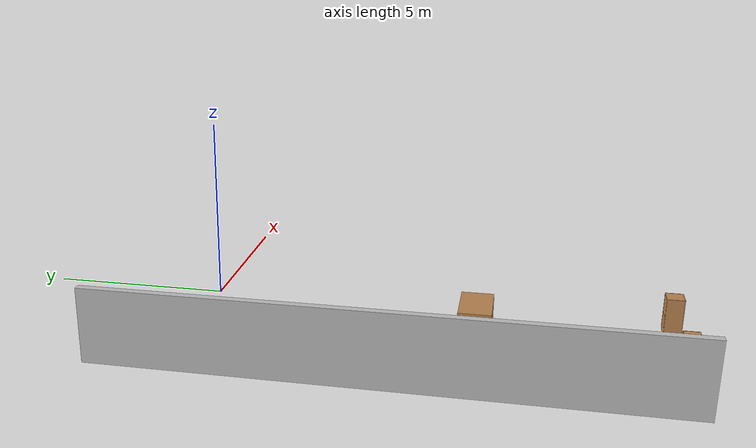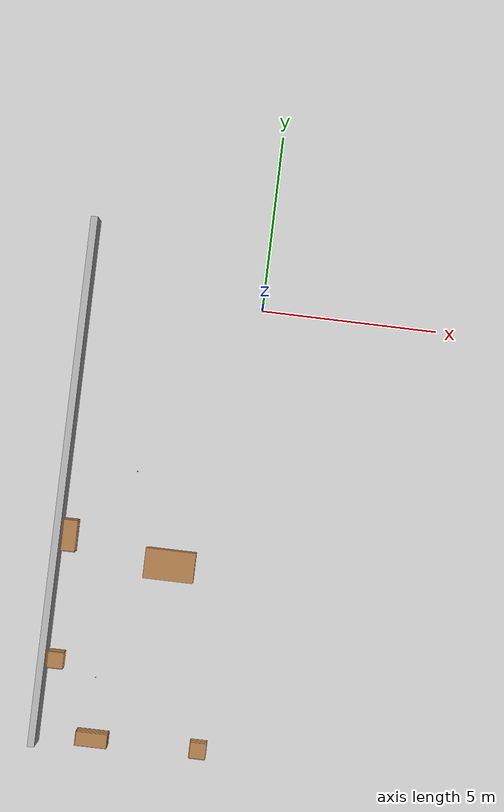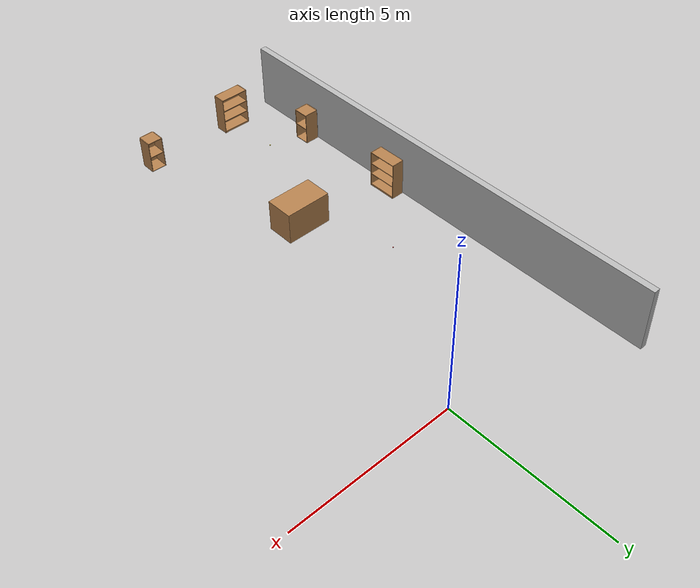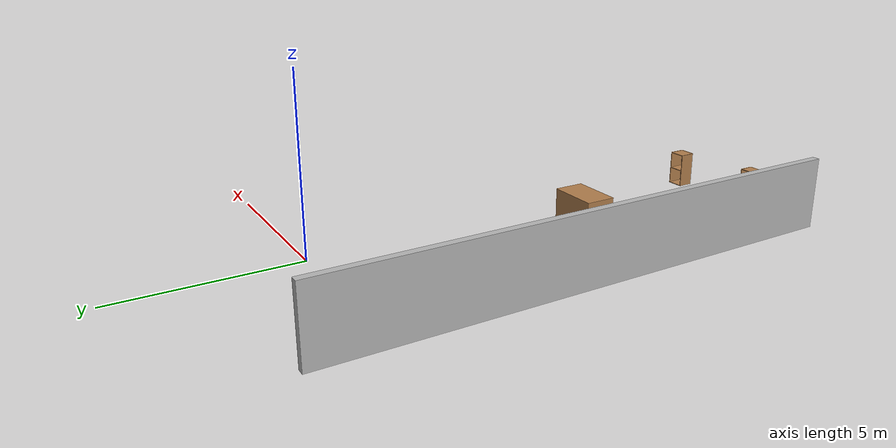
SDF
<sdf version="1.7">
 <world name="default">
  <model name="wall_3_model">
   <pose>-5 -5.5 1 0 -0 0</pose>
   <static>1</static>
   <link name="wall_3_body">
    <inertial>
     <mass>1</mass>
     <inertia><ixx>1</ixx><ixy>0</ixy><ixz>0</ixz><iyy>1</iyy><iyz>0</iyz><izz>1</izz></inertia>
    </inertial>
    <collision name="collision"><geometry><box><size>0.2 15 2</size></box></geometry></collision>
    <visual name="visual"><geometry><box><size>0.2 15 2</size></box></geometry></visual>
    <velocity_decay><linear>0</linear><angular>0</angular></velocity_decay>
   </link>
  </model>
  <model name="bookshelf_2">
   <static>0</static>
   <link name="link">
    <inertial>
     <mass>1</mass>
     <inertia><ixx>1</ixx><ixy>0</ixy><ixz>0</ixz><iyy>1</iyy><iyz>0</iyz><izz>1</izz></inertia>
    </inertial>
    <collision name="back">
     <pose>0 0.005 0.6 0 -0 0</pose>
     <geometry><box><size>0.9 0.01 1.2</size></box></geometry>
    </collision>
    <visual name="visual1">
     <pose>0 0.005 0.6 0 -0 0</pose>
     <geometry><box><size>0.9 0.01 1.2</size></box></geometry>
     <material>
      <script><uri>file://media/materials/scripts/gazebo.material</uri><name>Gazebo/Wood</name></script>
     </material>
    </visual>
    <collision name="left_side">
     <pose>0.45 -0.195 0.6 0 -0 0</pose>
     <geometry><box><size>0.02 0.4 1.2</size></box></geometry>
    </collision>
    <visual name="visual2">
     <pose>0.45 -0.195 0.6 0 -0 0</pose>
     <geometry><box><size>0.02 0.4 1.2</size></box></geometry>
     <material>
      <script><uri>file://media/materials/scripts/gazebo.material</uri><name>Gazebo/Wood</name></script>
     </material>
    </visual>
    <collision name="right_side">
     <pose>-0.45 -0.195 0.6 0 -0 0</pose>
     <geometry><box><size>0.02 0.4 1.2</size></box></geometry>
    </collision>
    <visual name="visual3">
     <pose>-0.45 -0.195 0.6 0 -0 0</pose>
     <geometry><box><size>0.02 0.4 1.2</size></box></geometry>
     <material>
      <script><uri>file://media/materials/scripts/gazebo.material</uri><name>Gazebo/Wood</name></script>
     </material>
    </visual>
    <collision name="bottom">
     <pose>0 -0.195 0.03 0 -0 0</pose>
     <geometry><box><size>0.88 0.4 0.06</size></box></geometry>
    </collision>
    <visual name="visual4">
     <pose>0 -0.195 0.03 0 -0 0</pose>
     <geometry><box><size>0.88 0.4 0.06</size></box></geometry>
     <material>
      <script><uri>file://media/materials/scripts/gazebo.material</uri><name>Gazebo/Wood</name></script>
     </material>
    </visual>
    <collision name="top">
     <pose>0 -0.195 1.19 0 -0 0</pose>
     <geometry><box><size>0.88 0.4 0.02</size></box></geometry>
    </collision>
    <visual name="visual5">
     <pose>0 -0.195 1.19 0 -0 0</pose>
     <geometry><box><size>0.88 0.4 0.02</size></box></geometry>
     <material>
      <script><uri>file://media/materials/scripts/gazebo.material</uri><name>Gazebo/Wood</name></script>
     </material>
    </visual>
    <collision name="low_shelf">
     <pose>0 -0.195 0.43 0 -0 0</pose>
     <geometry><box><size>0.88 0.4 0.02</size></box></geometry>
    </collision>
    <visual name="visual6">
     <pose>0 -0.195 0.43 0 -0 0</pose>
     <geometry><box><size>0.88 0.4 0.02</size></box></geometry>
     <material>
      <script><uri>file://media/materials/scripts/gazebo.material</uri><name>Gazebo/Wood</name></script>
     </material>
    </visual>
    <collision name="high_shelf">
     <pose>0 -0.195 0.8 0 -0 0</pose>
     <geometry><box><size>0.88 0.4 0.02</size></box></geometry>
    </collision>
    <visual name="visual7">
     <pose>0 -0.195 0.8 0 -0 0</pose>
     <geometry><box><size>0.88 0.4 0.02</size></box></geometry>
     <material>
      <script><uri>file://media/materials/scripts/gazebo.material</uri><name>Gazebo/Wood</name></script>
     </material>
    </visual>
    <velocity_decay><linear>0</linear><angular>0</angular></velocity_decay>
   </link>
   <pose>-4.86972 -7.01077 1e-06 0 1e-06 1.57822</pose>
  </model>
  <model name="bookshelf_5">
   <static>0</static>
   <link name="link">
    <inertial>
     <mass>1</mass>
     <inertia><ixx>1</ixx><ixy>0</ixy><ixz>0</ixz><iyy>1</iyy><iyz>0</iyz><izz>1</izz></inertia>
    </inertial>
    <collision name="back">
     <pose>0 0.005 0.6 0 -0 0</pose>
     <geometry><box><size>0.9 0.01 1.2</size></box></geometry>
    </collision>
    <visual name="visual1">
     <pose>0 0.005 0.6 0 -0 0</pose>
     <geometry><box><size>0.9 0.01 1.2</size></box></geometry>
     <material>
      <script><uri>file://media/materials/scripts/gazebo.material</uri><name>Gazebo/Wood</name></script>
     </material>
    </visual>
    <collision name="left_side">
     <pose>0.45 -0.195 0.6 0 -0 0</pose>
     <geometry><box><size>0.02 0.4 1.2</size></box></geometry>
    </collision>
    <visual name="visual2">
     <pose>0.45 -0.195 0.6 0 -0 0</pose>
     <geometry><box><size>0.02 0.4 1.2</size></box></geometry>
     <material>
      <script><uri>file://media/materials/scripts/gazebo.material</uri><name>Gazebo/Wood</name></script>
     </material>
    </visual>
    <collision name="right_side">
     <pose>-0.45 -0.195 0.6 0 -0 0</pose>
     <geometry><box><size>0.02 0.4 1.2</size></box></geometry>
    </collision>
    <visual name="visual3">
     <pose>-0.45 -0.195 0.6 0 -0 0</pose>
     <geometry><box><size>0.02 0.4 1.2</size></box></geometry>
     <material>
      <script><uri>file://media/materials/scripts/gazebo.material</uri><name>Gazebo/Wood</name></script>
     </material>
    </visual>
    <collision name="bottom">
     <pose>0 -0.195 0.03 0 -0 0</pose>
     <geometry><box><size>0.88 0.4 0.06</size></box></geometry>
    </collision>
    <visual name="visual4">
     <pose>0 -0.195 0.03 0 -0 0</pose>
     <geometry><box><size>0.88 0.4 0.06</size></box></geometry>
     <material>
      <script><uri>file://media/materials/scripts/gazebo.material</uri><name>Gazebo/Wood</name></script>
     </material>
    </visual>
    <collision name="top">
     <pose>0 -0.195 1.19 0 -0 0</pose>
     <geometry><box><size>0.88 0.4 0.02</size></box></geometry>
    </collision>
    <visual name="visual5">
     <pose>0 -0.195 1.19 0 -0 0</pose>
     <geometry><box><size>0.88 0.4 0.02</size></box></geometry>
     <material>
      <script><uri>file://media/materials/scripts/gazebo.material</uri><name>Gazebo/Wood</name></script>
     </material>
    </visual>
    <collision name="low_shelf">
     <pose>0 -0.195 0.43 0 -0 0</pose>
     <geometry><box><size>0.88 0.4 0.02</size></box></geometry>
    </collision>
    <visual name="visual6">
     <pose>0 -0.195 0.43 0 -0 0</pose>
     <geometry><box><size>0.88 0.4 0.02</size></box></geometry>
     <material>
      <script><uri>file://media/materials/scripts/gazebo.material</uri><name>Gazebo/Wood</name></script>
     </material>
    </visual>
    <collision name="high_shelf">
     <pose>0 -0.195 0.8 0 -0 0</pose>
     <geometry><box><size>0.88 0.4 0.02</size></box></geometry>
    </collision>
    <visual name="visual7">
     <pose>0 -0.195 0.8 0 -0 0</pose>
     <geometry><box><size>0.88 0.4 0.02</size></box></geometry>
     <material>
      <script><uri>file://media/materials/scripts/gazebo.material</uri><name>Gazebo/Wood</name></script>
     </material>
    </visual>
    <velocity_decay><linear>0</linear><angular>0</angular></velocity_decay>
   </link>
   <pose>-3.37078 -12.8838 1e-06 -6.3e-05 -0 -3.13747</pose>
  </model>
  <model name="cabinet_1_clone">
   <static>0</static>
   <link name="cabinet_bottom_plate">
    <inertial>
     <pose>0 0 -1 0 -0 0</pose>
     <inertia><ixx>2.05</ixx><ixy>0</ixy><ixz>0</ixz><iyy>2.05</iyy><iyz>0</iyz><izz>2.05</izz></inertia>
     <mass>25</mass>
    </inertial>
    <collision name="cabinet_bottom_plate_geom">
     <pose>0 0 0.01 0 -0 0</pose>
     <geometry><box><size>0.45 0.45 0.02</size></box></geometry>
    </collision>
    <visual name="cabinet_bottom_plate_geom_visual">
     <pose>0 0 0.01 0 -0 0</pose>
     <geometry><box><size>0.45 0.45 0.02</size></box></geometry>
     <material>
      <script><uri>file://media/materials/scripts/gazebo.material</uri><name>Gazebo/Wood</name></script>
     </material>
    </visual>
    <collision name="cabinet_bottom_plate_geom_cabinet_back_plate">
     <pose>0.235 0 0.51 0 -0 0</pose>
     <geometry><box><size>0.02 0.45 1.02</size></box></geometry>
    </collision>
    <visual name="cabinet_bottom_plate_geom_cabinet_back_plate_visual">
     <pose>0.235 0 0.51 0 -0 0</pose>
     <geometry><box><size>0.02 0.45 1.02</size></box></geometry>
     <material>
      <script><uri>file://media/materials/scripts/gazebo.material</uri><name>Gazebo/Wood</name></script>
     </material>
    </visual>
    <collision name="cabinet_bottom_plate_geom_cabinet_left_plate">
     <pose>0 0.235 0.51 0 -0 0</pose>
     <geometry><box><size>0.45 0.02 1.02</size></box></geometry>
    </collision>
    <visual name="cabinet_bottom_plate_geom_cabinet_left_plate_visual">
     <pose>0 0.235 0.51 0 -0 0</pose>
     <geometry><box><size>0.45 0.02 1.02</size></box></geometry>
     <material>
      <script><uri>file://media/materials/scripts/gazebo.material</uri><name>Gazebo/Wood</name></script>
     </material>
    </visual>
    <collision name="cabinet_bottom_plate_geom_cabinet_middle_plate">
     <pose>0 0 0.51 0 -0 0</pose>
     <geometry><box><size>0.45 0.45 0.02</size></box></geometry>
    </collision>
    <visual name="cabinet_bottom_plate_geom_cabinet_middle_plate_visual">
     <pose>0 0 0.51 0 -0 0</pose>
     <geometry><box><size>0.45 0.45 0.02</size></box></geometry>
     <material>
      <script><uri>file://media/materials/scripts/gazebo.material</uri><name>Gazebo/Wood</name></script>
     </material>
    </visual>
    <collision name="cabinet_bottom_plate_geom_cabinet_right_plate">
     <pose>0 -0.235 0.51 0 -0 0</pose>
     <geometry><box><size>0.45 0.02 1.02</size></box></geometry>
    </collision>
    <visual name="cabinet_bottom_plate_geom_cabinet_right_plate_visual">
     <pose>0 -0.235 0.51 0 -0 0</pose>
     <geometry><box><size>0.45 0.02 1.02</size></box></geometry>
     <material>
      <script><uri>file://media/materials/scripts/gazebo.material</uri><name>Gazebo/Wood</name></script>
     </material>
    </visual>
    <collision name="cabinet_bottom_plate_geom_cabinet_top_plate">
     <pose>0 0 1.01 0 -0 0</pose>
     <geometry><box><size>0.45 0.45 0.02</size></box></geometry>
    </collision>
    <visual name="cabinet_bottom_plate_geom_cabinet_top_plate_visual">
     <pose>0 0 1.01 0 -0 0</pose>
     <geometry><box><size>0.45 0.45 0.02</size></box></geometry>
     <material>
      <script><uri>file://media/materials/scripts/gazebo.material</uri><name>Gazebo/Wood</name></script>
     </material>
    </visual>
    <velocity_decay><linear>0</linear><angular>0</angular></velocity_decay>
   </link>
   <pose>-4.65278 -10.5758 -1e-06 -0 -3e-06 -3.13171</pose>
  </model>
  <model name="cabinet_0_clone">
   <static>0</static>
   <link name="cabinet_bottom_plate">
    <inertial>
     <pose>0 0 -1 0 -0 0</pose>
     <inertia><ixx>2.05</ixx><ixy>0</ixy><ixz>0</ixz><iyy>2.05</iyy><iyz>0</iyz><izz>2.05</izz></inertia>
     <mass>25</mass>
    </inertial>
    <collision name="cabinet_bottom_plate_geom">
     <pose>0 0 0.01 0 -0 0</pose>
     <geometry><box><size>0.45 0.45 0.02</size></box></geometry>
    </collision>
    <visual name="cabinet_bottom_plate_geom_visual">
     <pose>0 0 0.01 0 -0 0</pose>
     <geometry><box><size>0.45 0.45 0.02</size></box></geometry>
     <material>
      <script><uri>file://media/materials/scripts/gazebo.material</uri><name>Gazebo/Wood</name></script>
     </material>
    </visual>
    <collision name="cabinet_bottom_plate_geom_cabinet_back_plate">
     <pose>0.235 0 0.51 0 -0 0</pose>
     <geometry><box><size>0.02 0.45 1.02</size></box></geometry>
    </collision>
    <visual name="cabinet_bottom_plate_geom_cabinet_back_plate_visual">
     <pose>0.235 0 0.51 0 -0 0</pose>
     <geometry><box><size>0.02 0.45 1.02</size></box></geometry>
     <material>
      <script><uri>file://media/materials/scripts/gazebo.material</uri><name>Gazebo/Wood</name></script>
     </material>
    </visual>
    <collision name="cabinet_bottom_plate_geom_cabinet_left_plate">
     <pose>0 0.235 0.51 0 -0 0</pose>
     <geometry><box><size>0.45 0.02 1.02</size></box></geometry>
    </collision>
    <visual name="cabinet_bottom_plate_geom_cabinet_left_plate_visual">
     <pose>0 0.235 0.51 0 -0 0</pose>
     <geometry><box><size>0.45 0.02 1.02</size></box></geometry>
     <material>
      <script><uri>file://media/materials/scripts/gazebo.material</uri><name>Gazebo/Wood</name></script>
     </material>
    </visual>
    <collision name="cabinet_bottom_plate_geom_cabinet_middle_plate">
     <pose>0 0 0.51 0 -0 0</pose>
     <geometry><box><size>0.45 0.45 0.02</size></box></geometry>
    </collision>
    <visual name="cabinet_bottom_plate_geom_cabinet_middle_plate_visual">
     <pose>0 0 0.51 0 -0 0</pose>
     <geometry><box><size>0.45 0.45 0.02</size></box></geometry>
     <material>
      <script><uri>file://media/materials/scripts/gazebo.material</uri><name>Gazebo/Wood</name></script>
     </material>
    </visual>
    <collision name="cabinet_bottom_plate_geom_cabinet_right_plate">
     <pose>0 -0.235 0.51 0 -0 0</pose>
     <geometry><box><size>0.45 0.02 1.02</size></box></geometry>
    </collision>
    <visual name="cabinet_bottom_plate_geom_cabinet_right_plate_visual">
     <pose>0 -0.235 0.51 0 -0 0</pose>
     <geometry><box><size>0.45 0.02 1.02</size></box></geometry>
     <material>
      <script><uri>file://media/materials/scripts/gazebo.material</uri><name>Gazebo/Wood</name></script>
     </material>
    </visual>
    <collision name="cabinet_bottom_plate_geom_cabinet_top_plate">
     <pose>0 0 1.01 0 -0 0</pose>
     <geometry><box><size>0.45 0.45 0.02</size></box></geometry>
    </collision>
    <visual name="cabinet_bottom_plate_geom_cabinet_top_plate_visual">
     <pose>0 0 1.01 0 -0 0</pose>
     <geometry><box><size>0.45 0.45 0.02</size></box></geometry>
     <material>
      <script><uri>file://media/materials/scripts/gazebo.material</uri><name>Gazebo/Wood</name></script>
     </material>
    </visual>
    <velocity_decay><linear>0</linear><angular>0</angular></velocity_decay>
   </link>
   <pose>-0.337827 -12.6476 -1e-06 1e-06 -1e-06 -1.57179</pose>
  </model>
  <model name="unit_sphere_0">
   <pose>-3.0 -5.0 0.033303 -5e-06 1.3e-05 0.000147</pose>
   <link name="link">
    <inertial>
     <mass>0.01</mass>
     <inertia><ixx>0.1</ixx><ixy>0</ixy><ixz>0</ixz><iyy>0.1</iyy><iyz>0</iyz><izz>0.1</izz></inertia>
    </inertial>
    <collision name="collision"><geometry><sphere><radius>0.0180245</radius></sphere></geometry></collision>
    <visual name="visual">
     <geometry><sphere><radius>0.0180245</radius></sphere></geometry>
     <material>
      <script><name>Gazebo/Red</name><uri>file://media/materials/scripts/gazebo.material</uri></script>
     </material>
    </visual>
   </link>
  </model>
  <model name="unit_sphere_2">
   <pose>-3.5 -11.0 0.033303 -5e-06 1.3e-05 0.000147</pose>
   <link name="link">
    <inertial>
     <mass>0.01</mass>
     <inertia><ixx>0.1</ixx><ixy>0</ixy><ixz>0</ixz><iyy>0.1</iyy><iyz>0</iyz><izz>0.1</izz></inertia>
    </inertial>
    <collision name="collision"><geometry><sphere><radius>0.0180245</radius></sphere></geometry></collision>
    <visual name="visual">
     <geometry><sphere><radius>0.0180245</radius></sphere></geometry>
     <material>
      <script><name>Gazebo/Yellow</name><uri>file://media/materials/scripts/gazebo.material</uri></script>
     </material>
    </visual>
   </link>
  </model>
  <model name="not-so-table_box">
   <pose>-1.76173 -7.53134 0.5 2e-06 -0 0</pose>
   <link name="link">
    <inertial>
     <mass>1</mass>
     <inertia>
      <ixx>0.166667</ixx>
      <ixy>0</ixy>
      <ixz>0</ixz>
      <iyy>0.166667</iyy>
      <iyz>0</iyz>
      <izz>0.166667</izz>
     </inertia>
    </inertial>
    <collision name="collision"><geometry><box><size>1.43694 0.864808 1</size></box></geometry></collision>
    <visual name="visual">
     <geometry><box><size>1.43694 0.864808 1</size></box></geometry>
     <material>
      <script><uri>file://media/materials/scripts/gazebo.material</uri><name>Gazebo/Wood</name></script>
     </material>
    </visual>
   </link>
  </model>
 </world>
</sdf>
